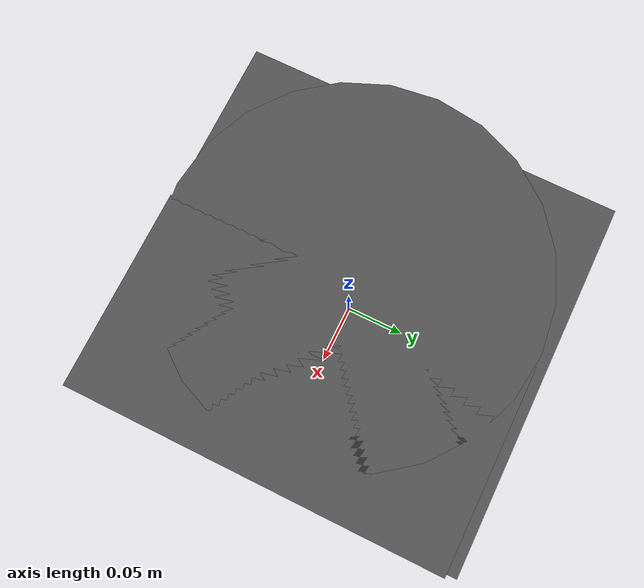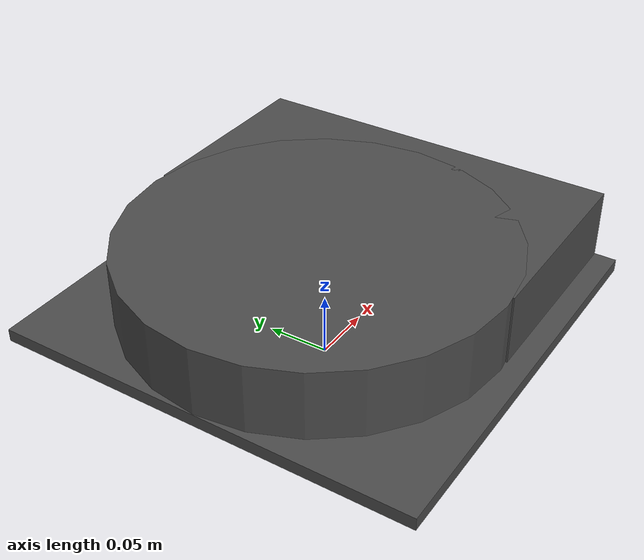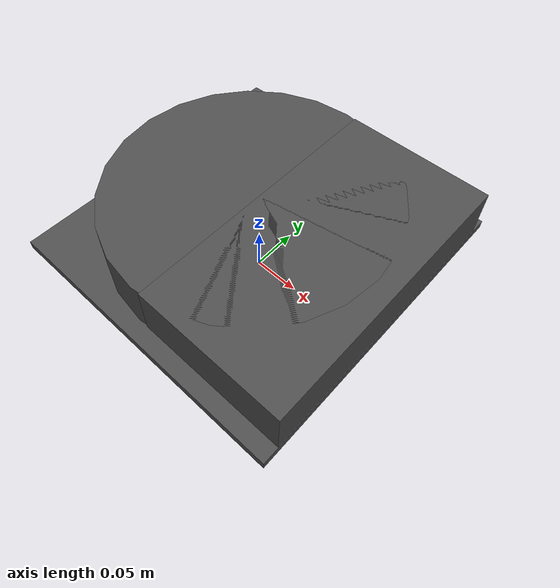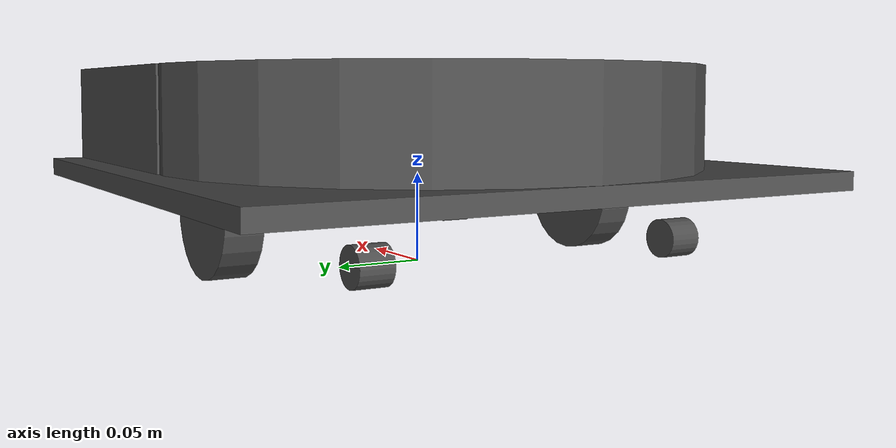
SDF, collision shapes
<sdf version='1.9'>
  <model name='neato_standalone'>
    <link name='base_link'>
      <pose>0 0 0 0 -0 0</pose>
      <inertial>
        <pose>0.00959 -0 8e-06 0 -0 0</pose>
        <mass>2.44131</mass>
        <inertia>
          <ixx>0.0246781</ixx>
          <ixy>-1.03977e-21</ixy>
          <ixz>1.82757e-06</ixz>
          <iyy>0.0246891</iyy>
          <iyz>-8.48244e-25</iyz>
          <izz>0.0418184</izz>
        </inertia>
      </inertial>
      <gravity>1</gravity>

      <collision name='robot_bumpers'>
        <geometry>
          <box>
            <size>0.321 0.335 0.01</size>
          </box>
        </geometry>
        <pose>0 0 0.05 0 0 0</pose>
      </collision>

      <collision name='base_footprint_fixed_joint_lump__base_link_collision'>
        <pose>-0.01 0 0.08 0 -0 0</pose>
        <geometry>
          <cylinder>
            <length>0.06</length>
            <radius>0.15</radius>
          </cylinder>
        </geometry>
        <surface>
          <contact>
            <ode/>
          </contact>
          <friction>
            <ode>
              <mu>0.0</mu>
              <mu2>0.0</mu2>
            </ode>
          </friction>
        </surface>
      </collision>
      <collision name='base_footprint_fixed_joint_lump__base_link_collision_1'>
        <pose>0.08 0 0.08 0 -0 0</pose>
        <geometry>
          <box>
            <size>0.16 0.3 0.06</size>
          </box>
        </geometry>
        <surface>
          <contact>
            <ode/>
          </contact>
          <friction>
            <ode>
              <mu>0.0</mu>
              <mu2>0.0</mu2>
            </ode>
          </friction>
        </surface>
      </collision>
      <collision name='base_footprint_fixed_joint_lump__caster_back_left_link_collision_3'>
        <pose>-0.11 0.09 0.02 1.5708 -0 0</pose>
        <geometry>
          <cylinder>
            <length>0.0176</length>
            <radius>0.01</radius>
          </cylinder>
        </geometry>
        <surface>
          <contact>
            <ode>
              <kp>1e+06</kp>
              <kd>100</kd>
              <max_vel>1</max_vel>
              <min_depth>0.001</min_depth>
            </ode>
          </contact>
          <friction>
            <ode>
              <mu>0.01</mu>
              <mu2>0.01</mu2>
            </ode>
          </friction>
        </surface>
      </collision>
      <collision name='base_footprint_fixed_joint_lump__caster_back_right_link_collision_4'>
        <pose>-0.11 -0.09 0.02 1.5708 -0 0</pose>
        <geometry>
          <cylinder>
            <length>0.0176</length>
            <radius>0.01</radius>
          </cylinder>
        </geometry>
        <surface>
          <contact>
            <ode>
              <kp>1e+06</kp>
              <kd>100</kd>
              <max_vel>1</max_vel>
              <min_depth>0.001</min_depth>
            </ode>
          </contact>
          <friction>
            <ode>
              <mu>0.01</mu>
              <mu2>0.01</mu2>
            </ode>
          </friction>
        </surface>
      </collision>
      <collision name='base_footprint_fixed_joint_lump__caster_front_left_link_collision_5'>
        <pose>0.08 0.075 0.02 1.5708 -0 0</pose>
        <geometry>
          <cylinder>
            <length>0.0176</length>
            <radius>0.01</radius>
          </cylinder>
        </geometry>
        <surface>
          <contact>
            <ode>
              <kp>1e+06</kp>
              <kd>100</kd>
              <max_vel>1</max_vel>
              <min_depth>0.001</min_depth>
            </ode>
          </contact>
          <friction>
            <ode>
              <mu>0.01</mu>
              <mu2>0.01</mu2>
            </ode>
          </friction>
        </surface>
      </collision>
      <collision name='base_footprint_fixed_joint_lump__caster_front_right_link_collision_6'>
        <pose>0.08 -0.075 0.02 1.5708 -0 0</pose>
        <geometry>
          <cylinder>
            <length>0.0176</length>
            <radius>0.01</radius>
          </cylinder>
        </geometry>
        <surface>
          <contact>
            <ode>
              <kp>1e+06</kp>
              <kd>100</kd>
              <max_vel>1</max_vel>
              <min_depth>0.001</min_depth>
            </ode>
          </contact>
          <friction>
            <ode>
              <mu>0.01</mu>
              <mu2>0.01</mu2>
            </ode>
          </friction>
        </surface>
      </collision>

      <visual name='base_footprint_fixed_joint_lump__base_link_visual'>
        <pose>0 0 0 0 -0 0</pose>
        <geometry>
          <mesh>
            <scale>0.001 0.001 0.001</scale>
            <uri>model://neato/meshes/main_body.stl</uri>
          </mesh>
        </geometry>
        <material>
          <diffuse>0.3 0.3 0.3 1</diffuse>
          <specular>0.1 0.1 0.1 1</specular>
        </material>
      </visual>

      <sensor name='bumpers' type='contact'>
        <always_on>true</always_on>
        <update_rate>10</update_rate>
        <contact>
          <collision>robot_bumpers</collision>
        </contact>
        <plugin filename="gz-sim-contact-system" name="gz::sim::systems::Contact">
          <topic>/bumper</topic>
        </plugin>
      </sensor>

      <sensor name='camera' type='camera'>
        <update_rate>10</update_rate>
        <topic>/camera/image</topic>
        <camera name='camera'>
          <horizontal_fov>1.39626</horizontal_fov>
          <image>
            <width>1024</width>
            <height>768</height>
            <format>R8G8B8</format>
          </image>
          <clip>
            <near>0.02</near>
            <far>300</far>
          </clip>
          <noise>
            <type>gaussian</type>
            <mean>0</mean>
            <stddev>0.007</stddev>
          </noise>
        </camera>
        <pose>-0.1 0 0.25 0 -0 0</pose>
      </sensor>

      <gravity>1</gravity>

      <sensor name='imu_sensor' type='imu'>
        <always_on>1</always_on>
        <update_rate>100</update_rate>
        <visualize>0</visualize>
        <topic>/imu</topic>
        <pose>0 0 0 0 -0 0</pose>
      </sensor>

      <sensor name='gpu_lidar' type='gpu_lidar'>
        <always_on>1</always_on>
        <update_rate>5</update_rate>
        <topic>/scan</topic>
          <gz_frame_id>base_laser_link</gz_frame_id>
        <ray>
          <scan>
            <horizontal>
              <samples>361</samples>
              <resolution>1</resolution>
              <min_angle>-3.14159</min_angle>
              <max_angle>3.14159</max_angle>
            </horizontal>
          </scan>
          <range>
            <min>0.1</min>
            <max>5</max>
            <resolution>1</resolution>
          </range>
        </ray>
        <pose>-0.084 0 0.166 0 -0 -3.14159</pose>
      </sensor>
    </link>

    <link name='wheel_left_link'>
      <pose>0 0.1175 0.035 0 -0 0</pose>
      <inertial>
        <pose>0 0 0 0 -0 0</pose>
        <mass>0.01</mass>
        <inertia>
          <ixx>0.001</ixx>
          <ixy>0</ixy>
          <ixz>0</ixz>
          <iyy>0.001</iyy>
          <iyz>0</iyz>
          <izz>0.001</izz>
        </inertia>
      </inertial>
      <collision name='wheel_left_link_collision'>
        <pose>0 0 0 1.5708 -0 0</pose>
        <geometry>
          <cylinder>
            <length>0.0206</length>
            <radius>0.035</radius>
          </cylinder>
        </geometry>
        <surface>
          <contact>
            <ode>
              <kp>1e+06</kp>
              <kd>100</kd>
              <max_vel>1</max_vel>
              <min_depth>0.001</min_depth>
            </ode>
          </contact>
          <friction>
            <ode>
              <mu>1.5</mu>
              <mu2>1.5</mu2>
            </ode>
          </friction>
        </surface>
      </collision>
      <visual name='wheel_left_link_visual'>
        <pose>0 0 0 1.5708 -0 0</pose>
        <geometry>
          <mesh>
            <scale>1 1 1</scale>
            <uri>model://neato/meshes/wheel.dae</uri>
          </mesh>
        </geometry>
        <material>
          <diffuse>0.3 0.3 0.3 1</diffuse>
          <specular>0.1 0.1 0.1 1</specular>
        </material>
      </visual>
      <gravity>1</gravity>
      <velocity_decay/>
    </link>

    <joint name='wheel_left_joint' type='revolute'>
      <child>wheel_left_link</child>
      <parent>base_link</parent>
      <axis>
        <xyz>0 1 0</xyz>
        <limit>
          <lower>-1e+16</lower>
          <upper>1e+16</upper>
        </limit>
        <dynamics>
          <damping>0.15</damping>
          <friction>0.7</friction>
        </dynamics>
      </axis>
    </joint>

    <link name='wheel_right_link'>
      <pose>0 -0.1175 0.035 0 -0 0</pose>
      <inertial>
        <pose>0 0 0 0 -0 0</pose>
        <mass>0.01</mass>
        <inertia>
          <ixx>0.001</ixx>
          <ixy>0</ixy>
          <ixz>0</ixz>
          <iyy>0.001</iyy>
          <iyz>0</iyz>
          <izz>0.001</izz>
        </inertia>
      </inertial>
      <collision name='wheel_right_link_collision'>
        <pose>0 0 0 1.5708 -0 0</pose>
        <geometry>
          <cylinder>
            <length>0.0206</length>
            <radius>0.035</radius>
          </cylinder>
        </geometry>
        <surface>
          <contact>
            <ode>
              <kp>1e+06</kp>
              <kd>100</kd>
              <max_vel>1</max_vel>
              <min_depth>0.001</min_depth>
            </ode>
          </contact>
          <friction>
            <ode>
              <mu>1.5</mu>
              <mu2>1.5</mu2>
            </ode>
          </friction>
        </surface>
      </collision>
      <visual name='wheel_right_link_visual'>
        <pose>0 0 0 1.5708 -0 0</pose>
        <geometry>
          <mesh>
            <scale>1 1 1</scale>
            <uri>model://neato/meshes/wheel.dae</uri>
          </mesh>
        </geometry>
        <material>
          <diffuse>0.3 0.3 0.3 1</diffuse>
          <specular>0.1 0.1 0.1 1</specular>
        </material>
      </visual>
      <gravity>1</gravity>
      <velocity_decay/>
    </link>

    <joint name='wheel_right_joint' type='revolute'>
      <child>wheel_right_link</child>
      <parent>base_link</parent>
      <axis>
        <xyz>0 1 0</xyz>
        <limit>
          <lower>-1e+16</lower>
          <upper>1e+16</upper>
        </limit>
        <dynamics>
          <damping>0.15</damping>
          <friction>0.7</friction>
        </dynamics>
      </axis>
    </joint>

    <plugin name="gz::sim::systems::DiffDrive" filename="gz-sim-diff-drive-system">
      <left_joint>wheel_left_joint</left_joint>
      <right_joint>wheel_right_joint</right_joint>
      <wheel_separation>0.235</wheel_separation>
      <wheel_radius>0.035</wheel_radius>
      <topic>/cmd_vel</topic>
      <odom_topic>/odom</odom_topic>
      <tf_topic>/model/neato_standalone/tf</tf_topic>
      <frame_id>odom</frame_id>
      <child_frame_id>base_link</child_frame_id>
      <max_wheel_torque>8.0</max_wheel_torque>
      <max_wheel_acceleration>50</max_wheel_acceleration>
      <publish_odom>true</publish_odom>
      <publish_tf>true</publish_tf>
      <odom_publish_frequency>20</odom_publish_frequency>
    </plugin>

    <plugin name="gz::sim::systems::JointStatePublisher" filename="gz-sim-joint-state-publisher-system">
      <topic>joint_states</topic>
      <joint_name>wheel_left_joint</joint_name>
      <joint_name>wheel_right_joint</joint_name>
    </plugin>

    <static>0</static>

  </model>
</sdf>
